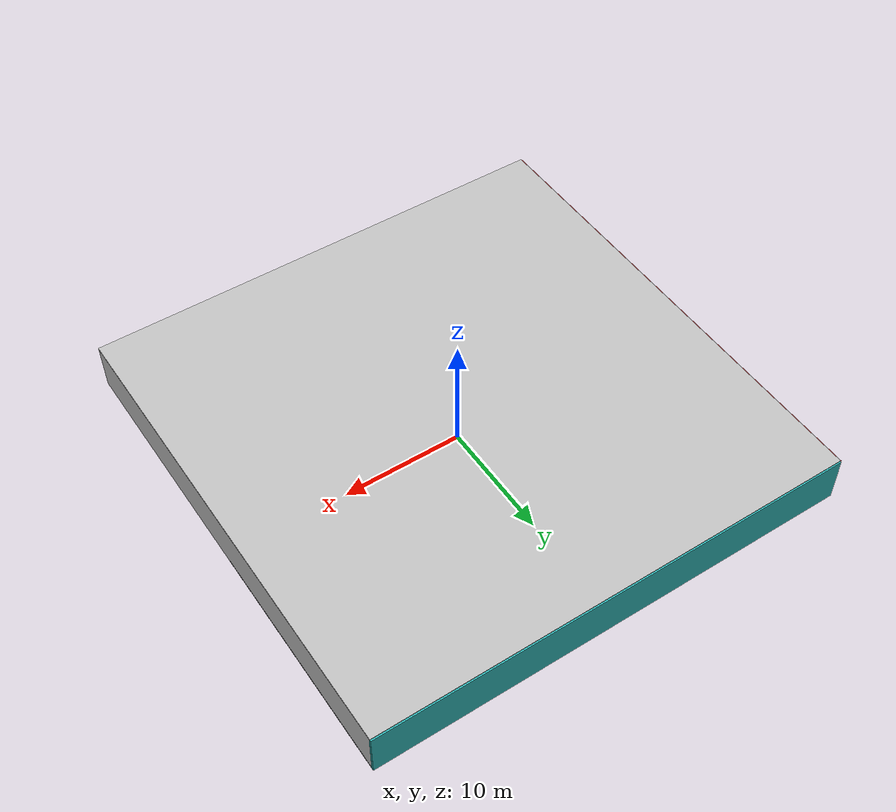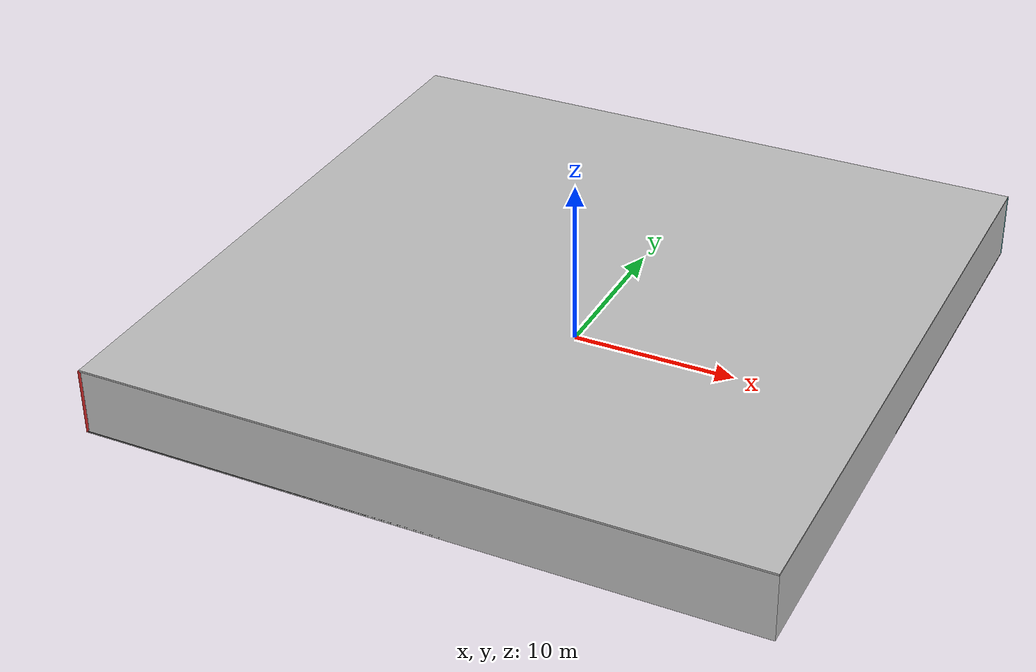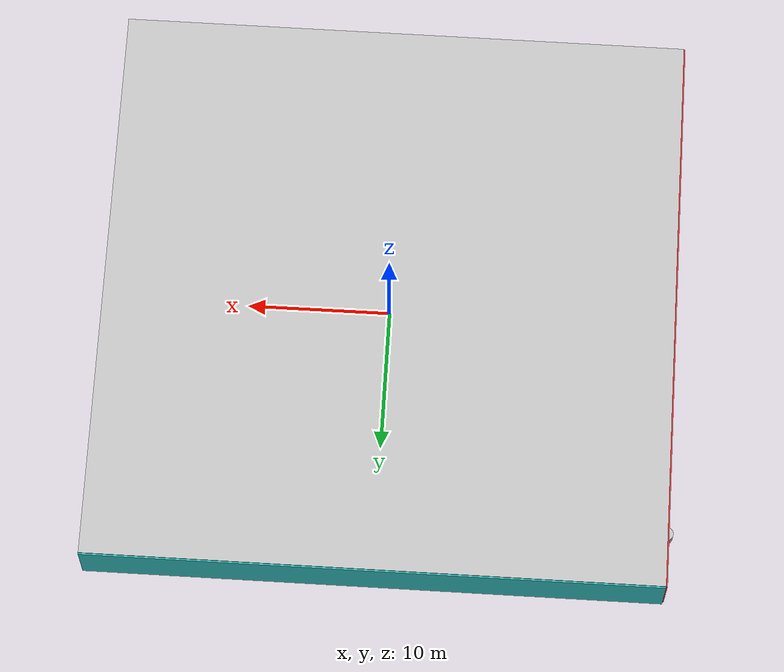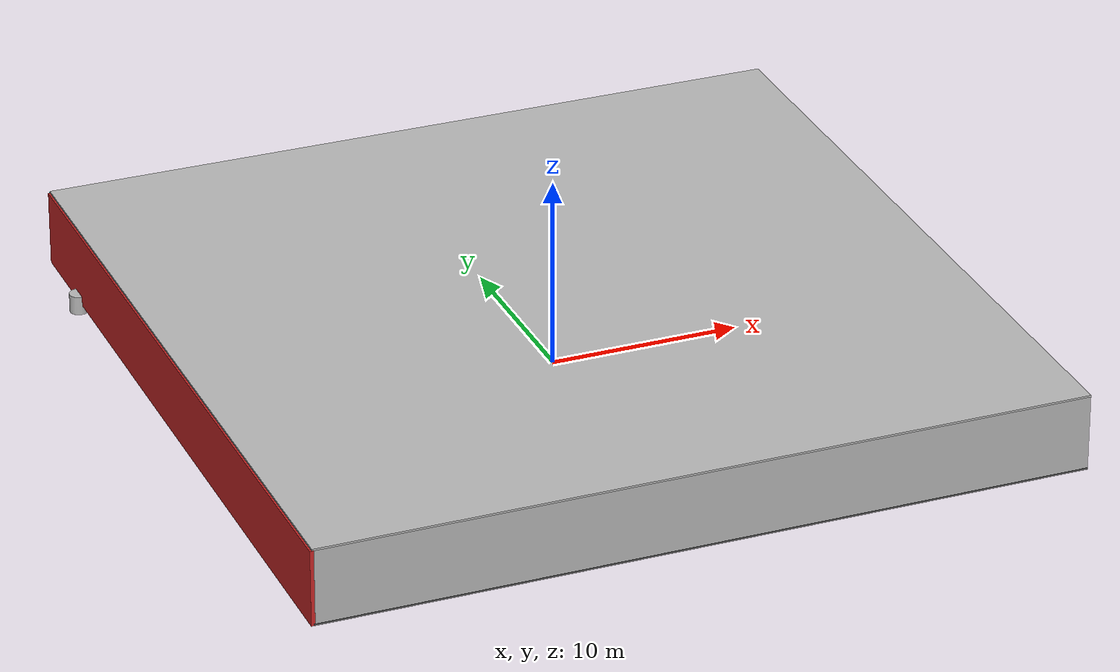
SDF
<sdf version="1.4">
 <world name="default">
  <physics type="ode">
   <max_step_size>0.001</max_step_size>
   <real_time_factor>1</real_time_factor>
   <real_time_update_rate>1000</real_time_update_rate>
   <gravity>0 0 -9.8</gravity>
  </physics>
  <scene><ambient>0.4 0.4 0.4 1</ambient><background>0.7 0.7 0.7 1</background><shadows>1</shadows></scene>
  <model name="Surrounding">
   <static>1</static>
   <link name="Ceiling">
    <collision name="Ceiling_Collision"><geometry><box><size>40 40 0.1</size></box></geometry></collision>
    <visual name="Ceiling_Visual">
     <geometry><box><size>40 40 0.1</size></box></geometry>
     <material>
      <script><uri>file://media/materials/scripts/gazebo.material</uri><name>Gazebo/CloudySky</name></script>
     </material>
    </visual>
    <pose>0 0 4.05 0 0 0</pose>
   </link>
   <link name="Wall_South">
    <collision name="Wall_South_Collision">
     <geometry><box><size>40 0 4</size></box></geometry>
     <pose>0 0 2 0 -0 0</pose>
    </collision>
    <visual name="Wall_South_Visual">
     <pose>0 0 2 0 -0 0</pose>
     <geometry><box><size>40 0 4</size></box></geometry>
     <material>
      <script><uri>file://media/materials/scripts/gazebo.material</uri><name>Gazebo/CloudySky</name></script>
     </material>
    </visual>
    <velocity_decay><linear>0</linear><angular>0</angular></velocity_decay>
    <pose>0 -20 0 0 -0 0</pose>
   </link>
   <link name="Wall_East">
    <collision name="Wall_21_Collision">
     <geometry><box><size>40 0 4</size></box></geometry>
     <pose>0 0 2 0 -0 0</pose>
    </collision>
    <visual name="Wall_21_Visual">
     <pose>0 0 2 0 -0 0</pose>
     <geometry><box><size>40 0 4</size></box></geometry>
     <material>
      <script><uri>file://media/materials/scripts/gazebo.material</uri><name>Gazebo/White</name></script>
     </material>
    </visual>
    <velocity_decay><linear>0</linear><angular>0</angular></velocity_decay>
    <pose>20 0 0 0 -0 1.5708</pose>
   </link>
   <link name="Wall_North">
    <collision name="Wall_22_Collision">
     <geometry><box><size>40 0.2 4</size></box></geometry>
     <pose>0 0 2 0 -0 0</pose>
    </collision>
    <visual name="Wall_22_Visual">
     <pose>0 0 2 0 -0 0</pose>
     <geometry><box><size>40 0.2 4</size></box></geometry>
     <material>
      <script><uri>file://media/materials/scripts/gazebo.material</uri><name>Gazebo/Turquoise</name></script>
     </material>
    </visual>
    <velocity_decay><linear>0</linear><angular>0</angular></velocity_decay>
    <pose>0 20 0 0 -0 0</pose>
   </link>
   <link name="Wall_West">
    <collision name="Wall_23_Collision">
     <geometry><box><size>40 0.2 4</size></box></geometry>
     <pose>0 0 2 0 -0 0</pose>
    </collision>
    <visual name="Wall_23_Visual">
     <pose>0 0 2 0 -0 0</pose>
     <geometry><box><size>40 0.2 4</size></box></geometry>
     <material>
      <script><uri>file://media/materials/scripts/gazebo.material</uri><name>Gazebo/Red</name></script>
     </material>
    </visual>
    <velocity_decay><linear>0</linear><angular>0</angular></velocity_decay>
    <pose>-20 0 0 0 0 -1.5708</pose>
   </link>
   <link name="Ground_link">
    <collision name="collision">
     <pose>0 0 .05 0 -0 0</pose>
     <geometry><box><size>40 40 0.1</size></box></geometry>
    </collision>
    <visual name="visual">
     <pose>0 0 .05 0 -0 0</pose>
     <geometry><box><size>40 40 0.1</size></box></geometry>
     <material>
      <script><uri>file://media/materials/scripts/gazebo.material</uri><name>Gazebo/DarkGrey</name></script>
     </material>
    </visual>
   </link>
   <static>1</static>
  </model>
  <spherical_coordinates>
   <surface_model>EARTH_WGS84</surface_model>
   <latitude_deg>0</latitude_deg>
   <longitude_deg>0</longitude_deg>
   <elevation>0</elevation>
   <heading_deg>0</heading_deg>
  </spherical_coordinates>
  <light name="lightball_0" type="diffuse">
   <diffuse>0.8 0.8 0.8 1</diffuse>
   <specular>0.2 0.2 0.2 1</specular>
   <attenuation>
    <range>100</range>
    <constant>0.7</constant>
    <linear>0.01</linear>
    <quadratic>0.001</quadratic>
   </attenuation>
   <direction>-0.5 0.1 -0.9</direction>
   <pose>18.9376187566 12.9149944941 2.41236587323 0 0 0</pose>
  </light>
  <light name="lightball_1" type="diffuse">
   <diffuse>0.8 0.8 0.8 1</diffuse>
   <specular>0.2 0.2 0.2 1</specular>
   <attenuation>
    <range>100</range>
    <constant>0.7</constant>
    <linear>0.01</linear>
    <quadratic>0.001</quadratic>
   </attenuation>
   <direction>-0.5 0.1 -0.9</direction>
   <pose>7.7156832142 -7.13450192403 1.57627275723 0 0 0</pose>
  </light>
  <light name="lightball_2" type="diffuse">
   <diffuse>0.8 0.8 0.8 1</diffuse>
   <specular>0.2 0.2 0.2 1</specular>
   <attenuation>
    <range>100</range>
    <constant>0.7</constant>
    <linear>0.01</linear>
    <quadratic>0.001</quadratic>
   </attenuation>
   <direction>-0.5 0.1 -0.9</direction>
   <pose>-15.6021631959 15.0290290608 3.39401787114 0 0 0</pose>
  </light>
  <light name="lightball_3" type="diffuse">
   <diffuse>0.8 0.8 0.8 1</diffuse>
   <specular>0.2 0.2 0.2 1</specular>
   <attenuation>
    <range>100</range>
    <constant>0.7</constant>
    <linear>0.01</linear>
    <quadratic>0.001</quadratic>
   </attenuation>
   <direction>-0.5 0.1 -0.9</direction>
   <pose>14.7401363347 14.5529600849 1.86351313585 0 0 0</pose>
  </light>
  <include>
   <uri>model://construction_cone</uri>
   <pose>-16.7744969022 -11.2630052299 0 0 0 3.0793017348</pose>
  </include>
  <include>
   <uri>model://textured_shapes</uri>
   <pose>-18.614121211 15.194723597 0 0 0 1.57384929165</pose>
  </include>
  <include><uri>model://table</uri><pose>-14.1146155549 17.9545044915 0 0 0 0.862768891057</pose></include>
  <include>
   <uri>model://construction_cone</uri>
   <pose>-7.88520274501 -2.78459774581 0 0 0 1.70928602299</pose>
  </include>
  <include><uri>model://cabinet</uri><pose>-9.08616605679 12.2913479701 0 0 0 1.7902582734</pose></include>
  <include><uri>model://cabinet</uri><pose>-1.62805390141 -17.6586965037 0 0 0 2.03259422211</pose></include>
  <include><uri>model://table</uri><pose>-3.41878275126 -6.00630598943 0 0 0 1.40479042386</pose></include>
  <include>
   <uri>model://construction_cone</uri>
   <pose>-3.65583875706 0.15494878636 0 0 0 0.753742736349</pose>
  </include>
  <include>
   <uri>model://robocup_3Dsim_goal</uri>
   <pose>-2.14968823741 11.3892828647 0 0 0 2.54215485532</pose>
  </include>
  <include><uri>model://cabinet</uri><pose>-2.20808375751 17.3291170782 0 0 0 2.84336840274</pose></include>
  <include><uri>model://table</uri><pose>1.22789128136 -13.5466710393 0 0 0 0.244190663268</pose></include>
  <include>
   <uri>model://construction_cone</uri>
   <pose>0.148968170774 0.347110963174 0 0 0 0.719101512488</pose>
  </include>
  <include><uri>model://cabinet</uri><pose>1.40081960043 10.0404690105 0 0 0 0.641145532457</pose></include>
  <include><uri>model://cabinet</uri><pose>2.3883883229 -5.81599312006 0 0 0 0.209539968649</pose></include>
  <include><uri>model://cabinet</uri><pose>3.43322778341 0.506501282437 0 0 0 0.176545985508</pose></include>
  <include><uri>model://table</uri><pose>3.5824350808 4.41313099303 0 0 0 0.672254721442</pose></include>
  <include>
   <uri>model://textured_shapes</uri>
   <pose>6.57829126767 -14.6313633343 0 0 0 2.55761387533</pose>
  </include>
  <include><uri>model://table</uri><pose>9.79084990193 -17.2757533323 0 0 0 2.84999312599</pose></include>
  <include>
   <uri>model://construction_cone</uri>
   <pose>9.1639467878 7.20091573633 0 0 0 0.175314135657</pose>
  </include>
  <include>
   <uri>model://construction_cone</uri>
   <pose>9.30528931167 12.2327916345 0 0 0 3.0679984074</pose>
  </include>
  <include><uri>model://cabinet</uri><pose>11.8235301715 -16.391062486 0 0 0 0.513473523885</pose></include>
  <include><uri>model://table</uri><pose>13.4367921787 -12.6919155655 0 0 0 0.632093808449</pose></include>
  <include>
   <uri>model://construction_cone</uri>
   <pose>11.6058507432 6.7251613393 0 0 0 2.12579605014</pose>
  </include>
  <include><uri>model://cabinet</uri><pose>11.7360377911 19.3534146432 0 0 0 2.65505389973</pose></include>
  <include><uri>model://cabinet</uri><pose>14.5107526237 -17.8266483704 0 0 0 1.99481606529</pose></include>
  <include>
   <uri>model://robocup_3Dsim_goal</uri>
   <pose>16.3328282118 -15.0802233632 0 0 0 1.90175883397</pose>
  </include>
  <include><uri>model://cabinet</uri><pose>19.0269408834 16.5833640179 0 0 0 0.0216200614431</pose></include>
 </world>
</sdf>

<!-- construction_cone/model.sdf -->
<sdf version="1.5">
  <model name="Construction Cone">
    <link name="link">
      <collision name="collision">
        <geometry>
          <mesh>
            <scale>10 10 10</scale>
            <uri>file://isr-testbed/construction_cone/meshes/construction_cone.dae</uri>
          </mesh>
        </geometry>
      </collision>
      <visual name="visual">
        <geometry>
          <mesh>
            <scale>10 10 10</scale>
            <uri>file://isr-testbed/construction_cone/meshes/construction_cone.dae</uri>
          </mesh>
        </geometry>
      </visual>
    </link>
  </model>
</sdf>

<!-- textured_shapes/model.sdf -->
<sdf version="1.6">
  <model name="textured_shapes">
    <pose>0 0 0.5 0 0 0</pose>
    <link name="box">
      <pose>0 -1.5 0 0 0 0</pose>
      <collision name="collision">
        <geometry>
          <box>
            <size>1 1 1</size>
          </box>
        </geometry>
      </collision>
      <visual name="visual">
        <geometry>
          <box>
            <size>1 1 1</size>
          </box>
        </geometry>
        <material>
          <script>
            <uri>model://../model_source/models/textured_shapes/materials/scripts</uri>
            <uri>model://../model_source/models/textured_shapes/materials/textures</uri>
            <name>TexturedShape/Squares</name>
          </script>
        </material>
      </visual>
    </link>
    <link name="sphere">
      <collision name="collision">
        <geometry>
          <sphere>
            <radius>0.5</radius>
          </sphere>
        </geometry>
      </collision>
      <visual name="visual">
        <geometry>
          <sphere>
            <radius>0.5</radius>
          </sphere>
        </geometry>
        <material>
          <script>
            <uri>model://../model_source/models/textured_shapes/materials/scripts</uri>
            <uri>model://../model_source/models/textured_shapes/materials/textures</uri>
            <name>TexturedShape/Squares</name>
          </script>
        </material>
      </visual>
    </link>
    <link name="cylinder">
      <pose>0 1.5 0 0 0 0</pose>
      <collision name="collision">
        <geometry>
          <cylinder>
            <radius>0.5</radius>
            <length>1</length>
          </cylinder>
        </geometry>
      </collision>
      <visual name="visual">
        <geometry>
          <cylinder>
            <radius>0.5</radius>
            <length>1</length>
          </cylinder>
        </geometry>
        <material>
          <script>
            <uri>model://../model_source/models/textured_shapes/materials/scripts</uri>
            <uri>model://../model_source/models/textured_shapes/materials/textures</uri>
            <name>TexturedShape/Squares</name>
          </script>
        </material>
      </visual>
    </link>
  </model>
</sdf>

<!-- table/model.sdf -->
<sdf version="1.5">
  <model name="table">
    <static>true</static>
    <link name="link">
      <collision name="surface">
        <pose>0 0 1.0 0 0 0</pose>
        <geometry>
          <box>
            <size>1.5 0.8 0.03</size>
          </box>
        </geometry>
        <surface>
          <friction>
            <ode>
              <mu>0.6</mu>
              <mu2>0.6</mu2>
            </ode>
          </friction>
        </surface>
      </collision>
      <visual name="visual1">
        <pose>0 0 1.0 0 0 0</pose>
        <geometry>
          <box>
            <size>1.5 0.8 0.03</size>
          </box>
        </geometry>
        <material>
          <script>
            <uri>model://media/materials/scripts/gazebo.material</uri>
            <name>Gazebo/Wood</name>
          </script>
        </material>
      </visual>
      <collision name="front_left_leg">
        <pose>0.68 0.38 0.5 0 0 0</pose>
        <geometry>
          <cylinder>
            <radius>0.02</radius>
            <length>1.0</length>
          </cylinder>
        </geometry>
      </collision>
      <visual name="front_left_leg">
        <pose>0.68 0.38 0.5 0 0 0</pose>
        <geometry>
          <cylinder>
            <radius>0.02</radius>
            <length>1.0</length>
          </cylinder>
        </geometry>
        <material>
          <script>
            <uri>model://media/materials/scripts/gazebo.material</uri>
            <name>Gazebo/Grey</name>
          </script>
        </material>
      </visual>
      <collision name="front_right_leg">
        <pose>0.68 -0.38 0.5 0 0 0</pose>
        <geometry>
          <cylinder>
            <radius>0.02</radius>
            <length>1.0</length>
          </cylinder>
        </geometry>
      </collision>
      <visual name="front_right_leg">
        <pose>0.68 -0.38 0.5 0 0 0</pose>
        <geometry>
          <cylinder>
            <radius>0.02</radius>
            <length>1.0</length>
          </cylinder>
        </geometry>
        <material>
          <script>
            <uri>model://media/materials/scripts/gazebo.material</uri>
            <name>Gazebo/Grey</name>
          </script>
        </material>
      </visual>
      <collision name="back_right_leg">
        <pose>-0.68 -0.38 0.5 0 0 0</pose>
        <geometry>
          <cylinder>
            <radius>0.02</radius>
            <length>1.0</length>
          </cylinder>
        </geometry>
      </collision>
      <visual name="back_right_leg">
        <pose>-0.68 -0.38 0.5 0 0 0</pose>
        <geometry>
          <cylinder>
            <radius>0.02</radius>
            <length>1.0</length>
          </cylinder>
        </geometry>
        <material>
          <script>
            <uri>model://media/materials/scripts/gazebo.material</uri>
            <name>Gazebo/Grey</name>
          </script>
        </material>
      </visual>
      <collision name="back_left_leg">
        <pose>-0.68 0.38 0.5 0 0 0</pose>
        <geometry>
          <cylinder>
            <radius>0.02</radius>
            <length>1.0</length>
          </cylinder>
        </geometry>
      </collision>
      <visual name="back_left_leg">
        <pose>-0.68 0.38 0.5 0 0 0</pose>
        <geometry>
          <cylinder>
            <radius>0.02</radius>
            <length>1.0</length>
          </cylinder>
        </geometry>
        <material>
          <script>
            <uri>model://media/materials/scripts/gazebo.material</uri>
            <name>Gazebo/Grey</name>
          </script>
        </material>
      </visual>
    </link>
  </model>
</sdf>

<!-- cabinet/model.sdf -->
<sdf version="1.5">
  <model name="cabinet">
    <static>true</static>
    <link name="cabinet_bottom_plate">
      <inertial>
        <pose>0 0 -1 0 0 0</pose>
        <inertia>
          <ixx>2.050000</ixx>
          <ixy>0</ixy>
          <ixz>0</ixz>
          <iyy>2.050000</iyy>
          <iyz>0</iyz>
          <izz>2.050000</izz>
        </inertia>
        <mass>25.000000</mass>
      </inertial>
      <collision name="cabinet_bottom_plate_geom">
        <pose>0 0 0.010000 0 0 0</pose>
        <geometry>
          <box>
            <size>0.450000 0.450000 0.020000</size>
          </box>
        </geometry>
      </collision>
      <visual name="cabinet_bottom_plate_geom_visual">
        <pose>0 0 0.010000 0 0 0</pose>
        <geometry>
          <box>
            <size>0.450000 0.450000 0.020000</size>
          </box>
        </geometry>
        <material>
          <script>
            <uri>model://media/materials/scripts/gazebo.material</uri>
            <name>Gazebo/Wood</name>
          </script>
        </material>
      </visual>
      <collision name="cabinet_bottom_plate_geom_cabinet_back_plate">
        <pose>0.235000 0 0.510000 0 0 0</pose>
        <geometry>
          <box>
            <size>0.020000 0.450000 1.020000</size>
          </box>
        </geometry>
      </collision>
      <visual name="cabinet_bottom_plate_geom_cabinet_back_plate_visual">
        <pose>0.235000 0 0.510000 0 0 0</pose>
        <geometry>
          <box>
            <size>0.020000 0.450000 1.020000</size>
          </box>
        </geometry>
        <material>
          <script>
            <uri>model://media/materials/scripts/gazebo.material</uri>
            <name>Gazebo/Wood</name>
          </script>
        </material>
      </visual>
      <collision name="cabinet_bottom_plate_geom_cabinet_left_plate">
        <pose>0 0.235000 0.510000 0 0 0</pose>
        <geometry>
          <box>
            <size>0.450000 0.020000 1.020000</size>
          </box>
        </geometry>
      </collision>
      <visual name="cabinet_bottom_plate_geom_cabinet_left_plate_visual">
        <pose>0 0.235000 0.510000 0 0 0</pose>
        <geometry>
          <box>
            <size>0.450000 0.020000 1.020000</size>
          </box>
        </geometry>
        <material>
          <script>
            <uri>model://media/materials/scripts/gazebo.material</uri>
            <name>Gazebo/Wood</name>
          </script>
        </material>
      </visual>
      <collision name="cabinet_bottom_plate_geom_cabinet_middle_plate">
        <pose>0 0 0.510000 0 0 0</pose>
        <geometry>
          <box>
            <size>0.450000 0.450000 0.020000</size>
          </box>
        </geometry>
      </collision>
      <visual name="cabinet_bottom_plate_geom_cabinet_middle_plate_visual">
        <pose>0 0 0.510000 0 0 0</pose>
        <geometry>
          <box>
            <size>0.450000 0.450000 0.020000</size>
          </box>
        </geometry>
        <material>
          <script>
            <uri>model://media/materials/scripts/gazebo.material</uri>
            <name>Gazebo/Wood</name>
          </script>
        </material>
      </visual>
      <collision name="cabinet_bottom_plate_geom_cabinet_right_plate">
        <pose>0 -0.235000 0.510000 0 0 0</pose>
        <geometry>
          <box>
            <size>0.450000 0.020000 1.020000</size>
          </box>
        </geometry>
      </collision>
      <visual name="cabinet_bottom_plate_geom_cabinet_right_plate_visual">
        <pose>0 -0.235000 0.510000 0 0 0</pose>
        <geometry>
          <box>
            <size>0.450000 0.020000 1.020000</size>
          </box>
        </geometry>
        <material>
          <script>
            <uri>model://media/materials/scripts/gazebo.material</uri>
            <name>Gazebo/Wood</name>
          </script>
        </material>
      </visual>
      <collision name="cabinet_bottom_plate_geom_cabinet_top_plate">
        <pose>0 0 1.010000 0 0 0</pose>
        <geometry>
          <box>
            <size>0.450000 0.450000 0.020000</size>
          </box>
        </geometry>
      </collision>
      <visual name="cabinet_bottom_plate_geom_cabinet_top_plate_visual">
        <pose>0 0 1.010000 0 0 0</pose>
        <geometry>
          <box>
            <size>0.450000 0.450000 0.020000</size>
          </box>
        </geometry>
        <material>
          <script>
            <uri>model://media/materials/scripts/gazebo.material</uri>
            <name>Gazebo/Wood</name>
          </script>
        </material>
      </visual>
    </link>
  </model>
</sdf>

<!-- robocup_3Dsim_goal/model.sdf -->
<sdf version="1.5">
  <model name="robocup_3d_goal">
    <static>true</static>
    <link name="left_post">
      <pose>0 1.05 0.45 0 0 0</pose>
      <collision name="collision">
        <geometry>
          <cylinder>
            <radius>0.05</radius>
            <length>0.9</length>
          </cylinder>
        </geometry>
      </collision>
      <visual name="visual">
        <geometry>
          <cylinder>
            <radius>0.05</radius>
            <length>0.9</length>
          </cylinder>
        </geometry>
        <material>
          <script>
            <uri>file://media/materials/scripts/gazebo.material</uri>
            <name>Gazebo/ZincYellow</name>
          </script>
        </material>
      </visual>
    </link>
    <link name="left_support_horiz_lower">
      <pose>0.30 1.05 0.01 0 0 0</pose>
      <collision name="collision">
        <geometry>
          <box>
            <size>0.50 0.02 0.02</size>
          </box>
        </geometry>
      </collision>
      <visual name="visual">
        <geometry>
          <box>
            <size>0.50 0.02 0.02</size>
          </box>
        </geometry>
        <material>
          <script>
            <uri>file://media/materials/scripts/gazebo.material</uri>
            <name>Gazebo/White</name>
          </script>
        </material>
      </visual>
    </link>
    <link name="left_support_horiz_upper">
      <pose>0.30 1.05 0.79 0 0 0</pose>
      <collision name="collision">
        <geometry>
          <box>
            <size>0.50 0.02 0.02</size>
          </box>
        </geometry>
      </collision>
      <visual name="visual">
        <geometry>
          <box>
            <size>0.50 0.02 0.02</size>
          </box>
        </geometry>
        <material>
          <script>
            <uri>file://media/materials/scripts/gazebo.material</uri>
            <name>Gazebo/White</name>
          </script>
        </material>
      </visual>
    </link>
    <link name="left_support_vertical">
      <pose>0.56 1.05 0.4 0 1.5708 0</pose>
      <collision name="collision">
        <geometry>
          <box>
            <size>0.80 0.02 0.02</size>
          </box>
        </geometry>
      </collision>
      <visual name="visual">
        <geometry>
          <box>
            <size>0.80 0.02 0.02</size>
          </box>
        </geometry>
        <material>
          <script>
            <uri>file://media/materials/scripts/gazebo.material</uri>
            <name>Gazebo/White</name>
          </script>
        </material>
      </visual>
    </link>
    <link name="right_support_horiz_lower">
      <pose>0.30 -1.05 0.01 0 0 0</pose>
      <collision name="collision">
        <geometry>
          <box>
            <size>0.50 0.02 0.02</size>
          </box>
        </geometry>
      </collision>
      <visual name="visual">
        <geometry>
          <box>
            <size>0.50 0.02 0.02</size>
          </box>
        </geometry>
        <material>
          <script>
            <uri>file://media/materials/scripts/gazebo.material</uri>
            <name>Gazebo/White</name>
          </script>
        </material>
      </visual>
    </link>
    <link name="right_support_horiz_upper">
      <pose>0.30 -1.05 0.79 0 0 0</pose>
      <collision name="collision">
        <geometry>
          <box>
            <size>0.50 0.02 0.02</size>
          </box>
        </geometry>
      </collision>
      <visual name="visual">
        <geometry>
          <box>
            <size>0.50 0.02 0.02</size>
          </box>
        </geometry>
        <material>
          <script>
            <uri>file://media/materials/scripts/gazebo.material</uri>
            <name>Gazebo/White</name>
          </script>
        </material>
      </visual>
    </link>
    <link name="right_support_vertical">
      <pose>0.56 -1.05 0.4 0 1.5708 0</pose>
      <collision name="collision">
        <geometry>
          <box>
            <size>0.80 0.02 0.02</size>
          </box>
        </geometry>
      </collision>
      <visual name="visual">
        <geometry>
          <box>
            <size>0.80 0.02 0.02</size>
          </box>
        </geometry>
        <material>
          <script>
            <uri>file://media/materials/scripts/gazebo.material</uri>
            <name>Gazebo/White</name>
          </script>
        </material>
      </visual>
    </link>
    <link name="center_support_horiz_lower">
      <pose>0.56 0 0.01 0 1.5708 0</pose>
      <collision name="collision">
        <geometry>
          <box>
            <size>0.02 2.08 0.02</size>
          </box>
        </geometry>
      </collision>
      <visual name="visual">
        <geometry>
          <box>
            <size>0.02 2.08 0.02</size>
          </box>
        </geometry>
        <material>
          <script>
            <uri>file://media/materials/scripts/gazebo.material</uri>
            <name>Gazebo/White</name>
          </script>
        </material>
      </visual>
    </link>
    <link name="center_support_horiz_upper">
      <pose>0.56 0 0.79 0 1.5708 0</pose>
      <collision name="collision">
        <geometry>
          <box>
            <size>0.02 2.08 0.02</size>
          </box>
        </geometry>
      </collision>
      <visual name="visual">
        <geometry>
          <box>
            <size>0.02 2.08 0.02</size>
          </box>
        </geometry>
        <material>
          <script>
            <uri>file://media/materials/scripts/gazebo.material</uri>
            <name>Gazebo/White</name>
          </script>
        </material>
      </visual>
    </link>
    <link name="right_post">
      <pose>0 -1.05 0.45 0 0 0</pose>
      <collision name="collision">
        <geometry>
          <cylinder>
            <radius>0.05</radius>
            <length>0.9</length>
          </cylinder>
        </geometry>
      </collision>
      <visual name="visual">
        <geometry>
          <cylinder>
            <radius>0.05</radius>
            <length>0.9</length>
          </cylinder>
        </geometry>
        <material>
          <script>
            <uri>file://media/materials/scripts/gazebo.material</uri>
            <name>Gazebo/ZincYellow</name>
          </script>
        </material>
      </visual>
    </link>
    <link name="crossbar">
      <pose>0 0 0.85 1.57 1.57 0</pose>
      <collision name="collision">
        <geometry>
          <cylinder>
            <radius>0.05</radius>
            <length>2.0</length>
          </cylinder>
        </geometry>
      </collision>
      <visual name="visual">
        <geometry>
          <cylinder>
            <radius>0.05</radius>
            <length>2.0</length>
          </cylinder>
        </geometry>
        <material>
          <script>
            <uri>file://media/materials/scripts/gazebo.material</uri>
            <name>Gazebo/ZincYellow</name>
          </script>
        </material>
      </visual>
    </link>
    <link name="center_net">
      <pose>0.56 0 0.40 0 0 0</pose>
      <collision name="collision">
        <geometry>
          <box>
            <size>0.01 2.1 0.80</size>
          </box>
        </geometry>
      </collision>
      <visual name="visual">
        <geometry>
          <box>
            <size>0.01 2.1 0.80</size>
          </box>
        </geometry>
        <material>
          <script>
            <uri>model://../model_source/models/robocup09_spl_field/materials/scripts/</uri>
            <uri>model://../model_source/models/robocup09_spl_field/materials/textures/</uri>
            <name>RoboCup/Net</name>
          </script>
        </material>
      </visual>
    </link>
    <link name="left_net">
      <pose>0.30 1.05 0.40 0 0 0</pose>
      <collision name="collision">
        <geometry>
          <box>
            <size>0.50 0.01 0.76</size>
          </box>
        </geometry>
      </collision>
      <visual name="visual">
        <geometry>
          <box>
            <size>0.50 0.01 0.76</size>
          </box>
        </geometry>
        <material>
          <script>
            <uri>model://../model_source/models/robocup09_spl_field/materials/scripts/</uri>
            <uri>model://../model_source/models/robocup09_spl_field/materials/textures/</uri>
            <name>RoboCup/Net</name>
          </script>
        </material>
      </visual>
    </link>
    <link name="right_net">
      <pose>0.30 -1.05 0.40 0 0 0</pose>
      <collision name="collision">
        <geometry>
          <box>
            <size>0.50 0.01 0.76</size>
          </box>
        </geometry>
      </collision>
      <visual name="visual">
        <geometry>
          <box>
            <size>0.50 0.01 0.76</size>
          </box>
        </geometry>
        <material>
          <script>
            <uri>model://../model_source/models/robocup09_spl_field/materials/scripts/</uri>
            <uri>model://../model_source/models/robocup09_spl_field/materials/textures/</uri>
            <name>RoboCup/Net</name>
          </script>
        </material>
      </visual>
    </link>
  </model>
</sdf>
